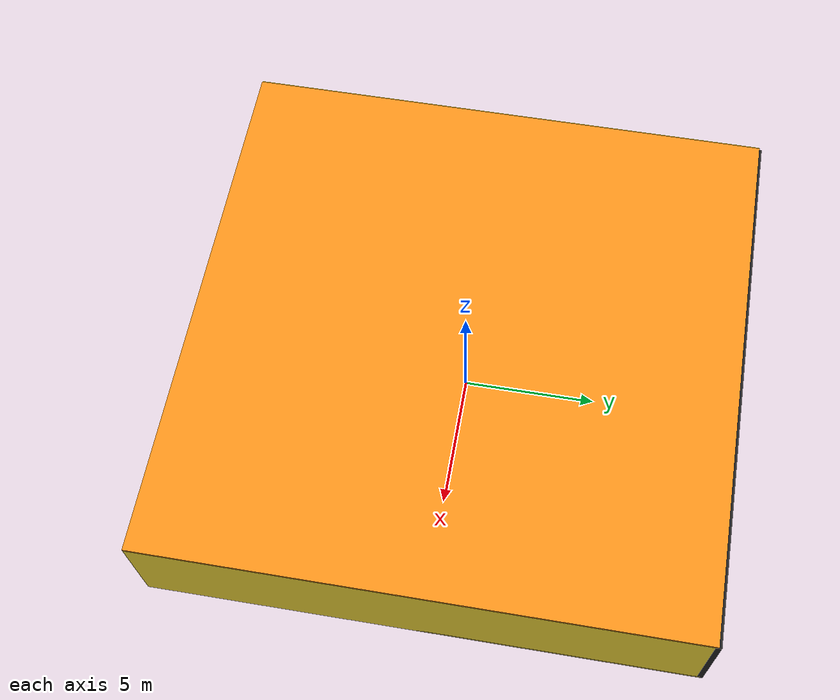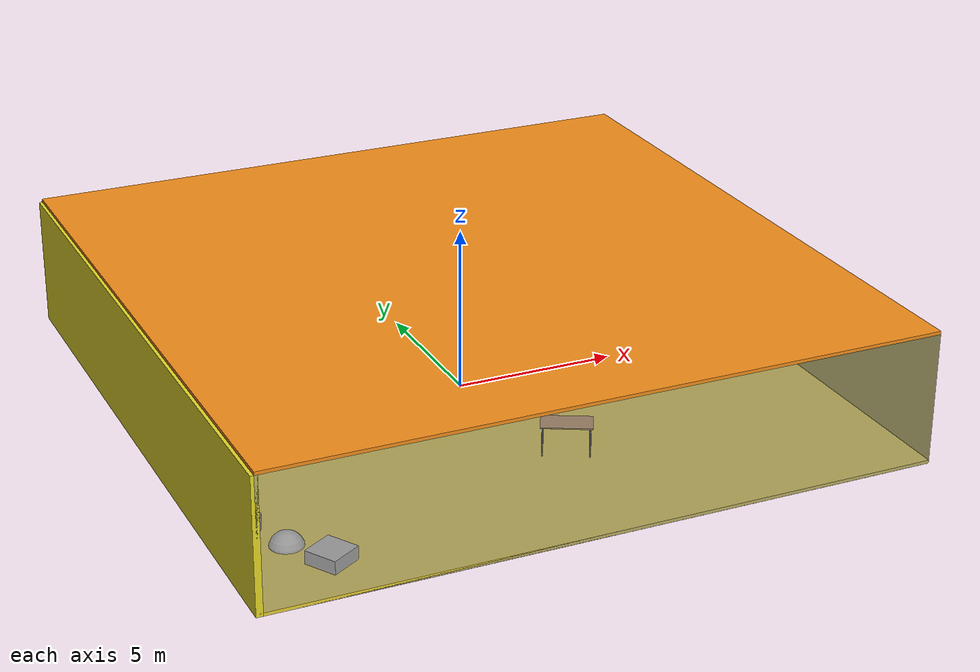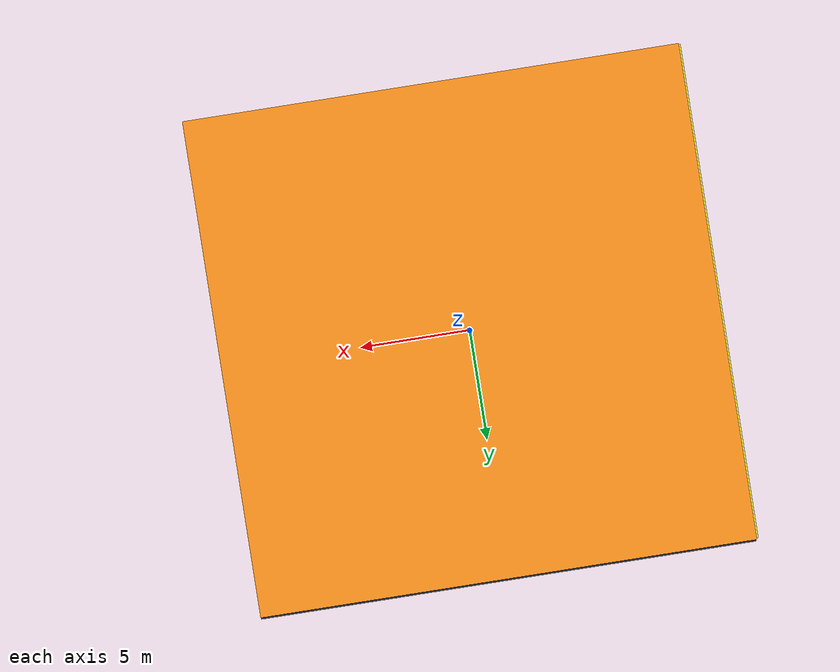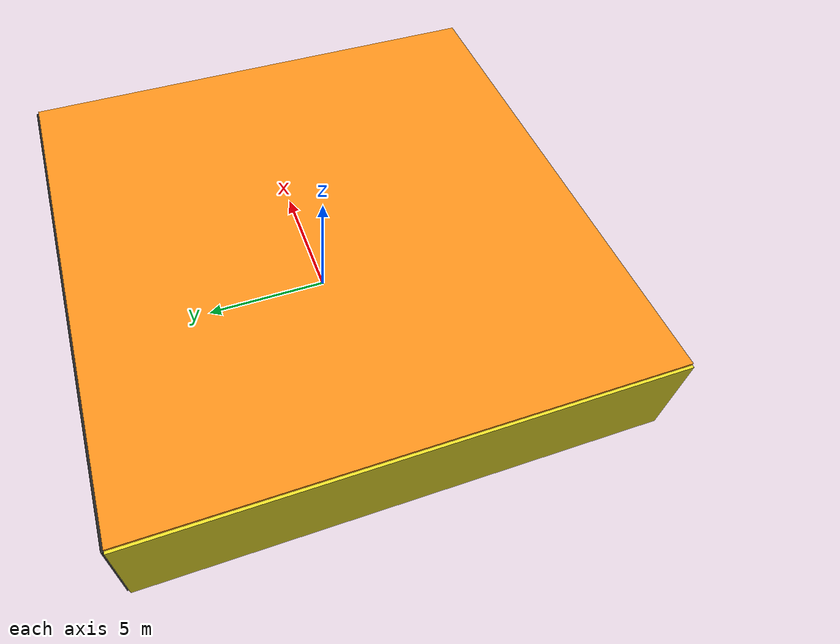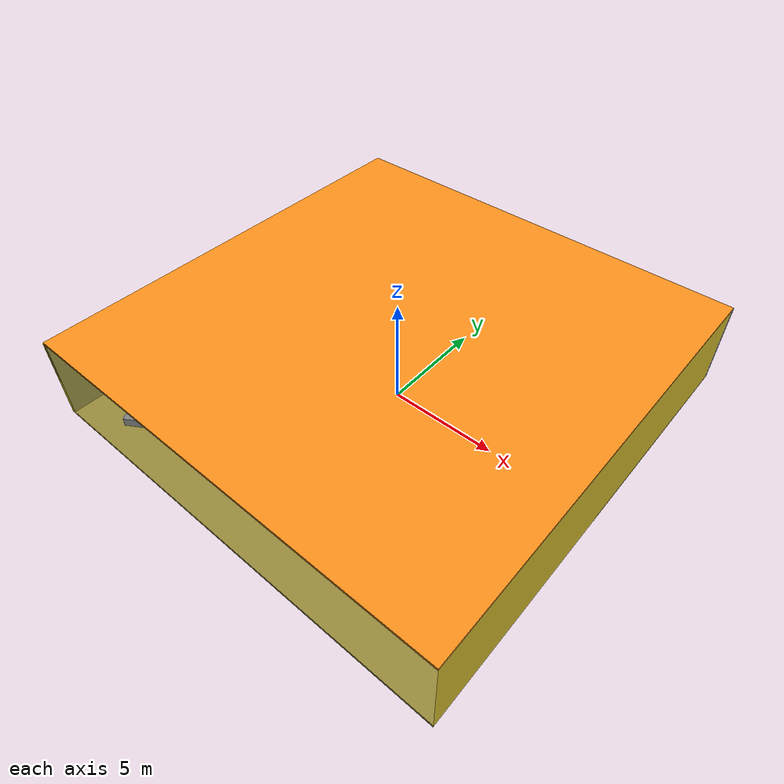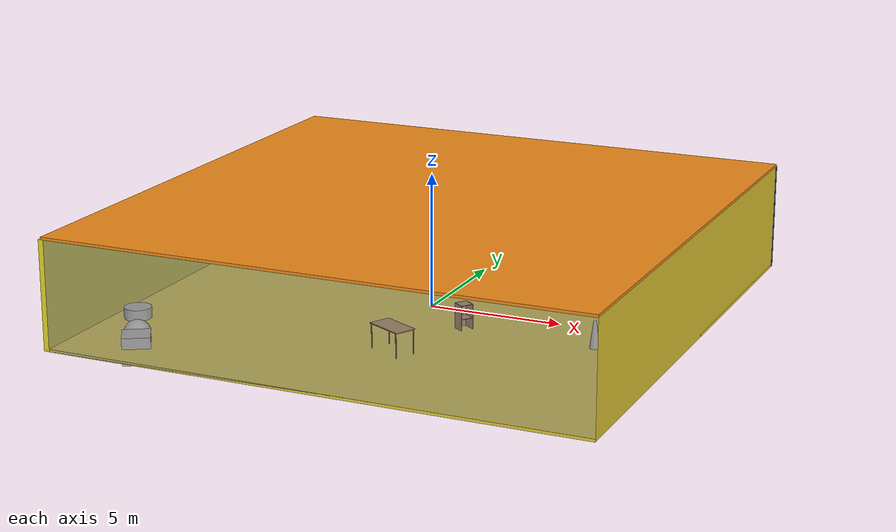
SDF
<sdf version="1.4">
 <world name="default">
  <physics type="ode">
   <max_step_size>0.001</max_step_size>
   <real_time_factor>1</real_time_factor>
   <real_time_update_rate>1000</real_time_update_rate>
   <gravity>0 0 -9.8</gravity>
  </physics>
  <scene><ambient>0.4 0.4 0.4 1</ambient><background>0.7 0.7 0.7 1</background><shadows>1</shadows></scene>
  <model name="Surrounding">
   <static>1</static>
   <link name="Ceiling">
    <collision name="Ceiling_Collision"><geometry><box><size>20 20 0.1</size></box></geometry></collision>
    <visual name="Ceiling_Visual">
     <geometry><box><size>20 20 0.1</size></box></geometry>
     <material>
      <script><uri>file://media/materials/scripts/gazebo.material</uri><name>Gazebo/Orange</name></script>
     </material>
    </visual>
    <pose>0 0 4.05 0 0 0</pose>
   </link>
   <link name="Wall_South">
    <collision name="Wall_South_Collision">
     <geometry><box><size>20 0 4</size></box></geometry>
     <pose>0 0 2 0 -0 0</pose>
    </collision>
    <visual name="Wall_South_Visual">
     <pose>0 0 2 0 -0 0</pose>
     <geometry><box><size>20 0 4</size></box></geometry>
     <material>
      <script><uri>file://media/materials/scripts/gazebo.material</uri><name>Gazebo/GreyTransparent</name></script>
     </material>
    </visual>
    <velocity_decay><linear>0</linear><angular>0</angular></velocity_decay>
    <pose>0 -10 0 0 -0 0</pose>
   </link>
   <link name="Wall_East">
    <collision name="Wall_21_Collision">
     <geometry><box><size>20 0 4</size></box></geometry>
     <pose>0 0 2 0 -0 0</pose>
    </collision>
    <visual name="Wall_21_Visual">
     <pose>0 0 2 0 -0 0</pose>
     <geometry><box><size>20 0 4</size></box></geometry>
     <material>
      <script><uri>file://media/materials/scripts/gazebo.material</uri><name>Gazebo/ZincYellow</name></script>
     </material>
    </visual>
    <velocity_decay><linear>0</linear><angular>0</angular></velocity_decay>
    <pose>10 0 0 0 -0 1.5708</pose>
   </link>
   <link name="Wall_North">
    <collision name="Wall_22_Collision">
     <geometry><box><size>20 0.2 4</size></box></geometry>
     <pose>0 0 2 0 -0 0</pose>
    </collision>
    <visual name="Wall_22_Visual">
     <pose>0 0 2 0 -0 0</pose>
     <geometry><box><size>20 0.2 4</size></box></geometry>
     <material>
      <script><uri>file://media/materials/scripts/gazebo.material</uri><name>Gazebo/FlatBlack</name></script>
     </material>
    </visual>
    <velocity_decay><linear>0</linear><angular>0</angular></velocity_decay>
    <pose>0 10 0 0 -0 0</pose>
   </link>
   <link name="Wall_West">
    <collision name="Wall_23_Collision">
     <geometry><box><size>20 0.2 4</size></box></geometry>
     <pose>0 0 2 0 -0 0</pose>
    </collision>
    <visual name="Wall_23_Visual">
     <pose>0 0 2 0 -0 0</pose>
     <geometry><box><size>20 0.2 4</size></box></geometry>
     <material>
      <script><uri>file://media/materials/scripts/gazebo.material</uri><name>Gazebo/YellowGlow</name></script>
     </material>
    </visual>
    <velocity_decay><linear>0</linear><angular>0</angular></velocity_decay>
    <pose>-10 0 0 0 0 -1.5708</pose>
   </link>
   <link name="Ground_link">
    <collision name="collision">
     <pose>0 0 .05 0 -0 0</pose>
     <geometry><box><size>20 20 0.1</size></box></geometry>
    </collision>
    <visual name="visual">
     <pose>0 0 .05 0 -0 0</pose>
     <geometry><box><size>20 20 0.1</size></box></geometry>
     <material>
      <script><uri>file://media/materials/scripts/gazebo.material</uri><name>Gazebo/ZincYellow</name></script>
     </material>
    </visual>
   </link>
   <static>1</static>
  </model>
  <spherical_coordinates>
   <surface_model>EARTH_WGS84</surface_model>
   <latitude_deg>0</latitude_deg>
   <longitude_deg>0</longitude_deg>
   <elevation>0</elevation>
   <heading_deg>0</heading_deg>
  </spherical_coordinates>
  <light name="lightball_0" type="diffuse">
   <diffuse>0.8 0.8 0.8 1</diffuse>
   <specular>0.2 0.2 0.2 1</specular>
   <attenuation>
    <range>100</range>
    <constant>0.7</constant>
    <linear>0.01</linear>
    <quadratic>0.001</quadratic>
   </attenuation>
   <direction>-0.5 0.1 -0.9</direction>
   <pose>9.222111301 6.22390029013 2.43052965422 0 0 0</pose>
  </light>
  <light name="lightball_1" type="diffuse">
   <diffuse>0.8 0.8 0.8 1</diffuse>
   <specular>0.2 0.2 0.2 1</specular>
   <attenuation>
    <range>100</range>
    <constant>0.7</constant>
    <linear>0.01</linear>
    <quadratic>0.001</quadratic>
   </attenuation>
   <direction>-0.5 0.1 -0.9</direction>
   <pose>-9.18638406003 5.3167375686 0.757529377678 0 0 0</pose>
  </light>
  <light name="lightball_2" type="diffuse">
   <diffuse>0.8 0.8 0.8 1</diffuse>
   <specular>0.2 0.2 0.2 1</specular>
   <attenuation>
    <range>100</range>
    <constant>0.7</constant>
    <linear>0.01</linear>
    <quadratic>0.001</quadratic>
   </attenuation>
   <direction>-0.5 0.1 -0.9</direction>
   <pose>1.29817245656 9.44758804756 1.18599326054 0 0 0</pose>
  </light>
  <light name="lightball_3" type="diffuse">
   <diffuse>0.8 0.8 0.8 1</diffuse>
   <specular>0.2 0.2 0.2 1</specular>
   <attenuation>
    <range>100</range>
    <constant>0.7</constant>
    <linear>0.01</linear>
    <quadratic>0.001</quadratic>
   </attenuation>
   <direction>-0.5 0.1 -0.9</direction>
   <pose>-9.61615435023 -2.64668222801 0.71098088426 0 0 0</pose>
  </light>
  <light name="lightball_4" type="diffuse">
   <diffuse>0.8 0.8 0.8 1</diffuse>
   <specular>0.2 0.2 0.2 1</specular>
   <attenuation>
    <range>100</range>
    <constant>0.7</constant>
    <linear>0.01</linear>
    <quadratic>0.001</quadratic>
   </attenuation>
   <direction>-0.5 0.1 -0.9</direction>
   <pose>8.85031690205 8.62863387069 2.70016344298 0 0 0</pose>
  </light>
  <light name="lightball_5" type="diffuse">
   <diffuse>0.8 0.8 0.8 1</diffuse>
   <specular>0.2 0.2 0.2 1</specular>
   <attenuation>
    <range>100</range>
    <constant>0.7</constant>
    <linear>0.01</linear>
    <quadratic>0.001</quadratic>
   </attenuation>
   <direction>-0.5 0.1 -0.9</direction>
   <pose>4.43603339522 -7.1794984475 0.686143160239 0 0 0</pose>
  </light>
  <light name="lightball_6" type="diffuse">
   <diffuse>0.8 0.8 0.8 1</diffuse>
   <specular>0.2 0.2 0.2 1</specular>
   <attenuation>
    <range>100</range>
    <constant>0.7</constant>
    <linear>0.01</linear>
    <quadratic>0.001</quadratic>
   </attenuation>
   <direction>-0.5 0.1 -0.9</direction>
   <pose>4.62538691441 5.13878323006 3.06700606088 0 0 0</pose>
  </light>
  <light name="lightball_7" type="diffuse">
   <diffuse>0.8 0.8 0.8 1</diffuse>
   <specular>0.2 0.2 0.2 1</specular>
   <attenuation>
    <range>100</range>
    <constant>0.7</constant>
    <linear>0.01</linear>
    <quadratic>0.001</quadratic>
   </attenuation>
   <direction>-0.5 0.1 -0.9</direction>
   <pose>1.21580350416 9.39001992789 2.66400664357 0 0 0</pose>
  </light>
  <light name="lightball_8" type="diffuse">
   <diffuse>0.8 0.8 0.8 1</diffuse>
   <specular>0.2 0.2 0.2 1</specular>
   <attenuation>
    <range>100</range>
    <constant>0.7</constant>
    <linear>0.01</linear>
    <quadratic>0.001</quadratic>
   </attenuation>
   <direction>-0.5 0.1 -0.9</direction>
   <pose>6.65004527385 5.5250456538 1.12311324559 0 0 0</pose>
  </light>
  <light name="lightball_9" type="diffuse">
   <diffuse>0.8 0.8 0.8 1</diffuse>
   <specular>0.2 0.2 0.2 1</specular>
   <attenuation>
    <range>100</range>
    <constant>0.7</constant>
    <linear>0.01</linear>
    <quadratic>0.001</quadratic>
   </attenuation>
   <direction>-0.5 0.1 -0.9</direction>
   <pose>7.31487699212 -4.78210253511 3.45933175832 0 0 0</pose>
  </light>
  <light name="lightball_10" type="diffuse">
   <diffuse>0.8 0.8 0.8 1</diffuse>
   <specular>0.2 0.2 0.2 1</specular>
   <attenuation>
    <range>100</range>
    <constant>0.7</constant>
    <linear>0.01</linear>
    <quadratic>0.001</quadratic>
   </attenuation>
   <direction>-0.5 0.1 -0.9</direction>
   <pose>-1.26647084408 7.73030924509 2.91556096392 0 0 0</pose>
  </light>
  <light name="lightball_11" type="diffuse">
   <diffuse>0.8 0.8 0.8 1</diffuse>
   <specular>0.2 0.2 0.2 1</specular>
   <attenuation>
    <range>100</range>
    <constant>0.7</constant>
    <linear>0.01</linear>
    <quadratic>0.001</quadratic>
   </attenuation>
   <direction>-0.5 0.1 -0.9</direction>
   <pose>-8.53077639687 3.23382672068 2.57252466662 0 0 0</pose>
  </light>
  <include>
   <uri>model://textured_shapes</uri>
   <pose>-8.19764856947 -7.06147772136 0 0 0 0.542351858576</pose>
  </include>
  <include>
   <uri>model://robocup_3Dsim_goal</uri>
   <pose>-4.18618256433 3.83208738387 0 0 0 0.883906617498</pose>
  </include>
  <include>
   <uri>model://construction_cone</uri>
   <pose>-1.65852163354 5.1954657316 0 0 0 0.977045033778</pose>
  </include>
  <include><uri>model://table</uri><pose>0.912387767985 -5.28501992604 0 0 0 2.66898197974</pose></include>
  <include><uri>model://cabinet</uri><pose>2.1680441224 -2.06723165467 0 0 0 2.52151108041</pose></include>
  <include><uri>model://cabinet</uri><pose>1.7055739763 5.18905939884 0 0 0 2.88843548557</pose></include>
  <include>
   <uri>model://construction_cone</uri>
   <pose>7.10290523226 -2.15030354451 0 0 0 1.7457500267</pose>
  </include>
 </world>
</sdf>

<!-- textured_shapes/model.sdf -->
<sdf version="1.6">
  <model name="textured_shapes">
    <pose>0 0 0.5 0 0 0</pose>
    <link name="box">
      <pose>0 -1.5 0 0 0 0</pose>
      <collision name="collision">
        <geometry>
          <box>
            <size>1 1 1</size>
          </box>
        </geometry>
      </collision>
      <visual name="visual">
        <geometry>
          <box>
            <size>1 1 1</size>
          </box>
        </geometry>
        <material>
          <script>
            <uri>model://../model_source/models/textured_shapes/materials/scripts</uri>
            <uri>model://../model_source/models/textured_shapes/materials/textures</uri>
            <name>TexturedShape/Squares</name>
          </script>
        </material>
      </visual>
    </link>
    <link name="sphere">
      <collision name="collision">
        <geometry>
          <sphere>
            <radius>0.5</radius>
          </sphere>
        </geometry>
      </collision>
      <visual name="visual">
        <geometry>
          <sphere>
            <radius>0.5</radius>
          </sphere>
        </geometry>
        <material>
          <script>
            <uri>model://../model_source/models/textured_shapes/materials/scripts</uri>
            <uri>model://../model_source/models/textured_shapes/materials/textures</uri>
            <name>TexturedShape/Squares</name>
          </script>
        </material>
      </visual>
    </link>
    <link name="cylinder">
      <pose>0 1.5 0 0 0 0</pose>
      <collision name="collision">
        <geometry>
          <cylinder>
            <radius>0.5</radius>
            <length>1</length>
          </cylinder>
        </geometry>
      </collision>
      <visual name="visual">
        <geometry>
          <cylinder>
            <radius>0.5</radius>
            <length>1</length>
          </cylinder>
        </geometry>
        <material>
          <script>
            <uri>model://../model_source/models/textured_shapes/materials/scripts</uri>
            <uri>model://../model_source/models/textured_shapes/materials/textures</uri>
            <name>TexturedShape/Squares</name>
          </script>
        </material>
      </visual>
    </link>
  </model>
</sdf>

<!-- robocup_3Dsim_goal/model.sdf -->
<sdf version="1.5">
  <model name="robocup_3d_goal">
    <static>true</static>
    <link name="left_post">
      <pose>0 1.05 0.45 0 0 0</pose>
      <collision name="collision">
        <geometry>
          <cylinder>
            <radius>0.05</radius>
            <length>0.9</length>
          </cylinder>
        </geometry>
      </collision>
      <visual name="visual">
        <geometry>
          <cylinder>
            <radius>0.05</radius>
            <length>0.9</length>
          </cylinder>
        </geometry>
        <material>
          <script>
            <uri>file://media/materials/scripts/gazebo.material</uri>
            <name>Gazebo/ZincYellow</name>
          </script>
        </material>
      </visual>
    </link>
    <link name="left_support_horiz_lower">
      <pose>0.30 1.05 0.01 0 0 0</pose>
      <collision name="collision">
        <geometry>
          <box>
            <size>0.50 0.02 0.02</size>
          </box>
        </geometry>
      </collision>
      <visual name="visual">
        <geometry>
          <box>
            <size>0.50 0.02 0.02</size>
          </box>
        </geometry>
        <material>
          <script>
            <uri>file://media/materials/scripts/gazebo.material</uri>
            <name>Gazebo/White</name>
          </script>
        </material>
      </visual>
    </link>
    <link name="left_support_horiz_upper">
      <pose>0.30 1.05 0.79 0 0 0</pose>
      <collision name="collision">
        <geometry>
          <box>
            <size>0.50 0.02 0.02</size>
          </box>
        </geometry>
      </collision>
      <visual name="visual">
        <geometry>
          <box>
            <size>0.50 0.02 0.02</size>
          </box>
        </geometry>
        <material>
          <script>
            <uri>file://media/materials/scripts/gazebo.material</uri>
            <name>Gazebo/White</name>
          </script>
        </material>
      </visual>
    </link>
    <link name="left_support_vertical">
      <pose>0.56 1.05 0.4 0 1.5708 0</pose>
      <collision name="collision">
        <geometry>
          <box>
            <size>0.80 0.02 0.02</size>
          </box>
        </geometry>
      </collision>
      <visual name="visual">
        <geometry>
          <box>
            <size>0.80 0.02 0.02</size>
          </box>
        </geometry>
        <material>
          <script>
            <uri>file://media/materials/scripts/gazebo.material</uri>
            <name>Gazebo/White</name>
          </script>
        </material>
      </visual>
    </link>
    <link name="right_support_horiz_lower">
      <pose>0.30 -1.05 0.01 0 0 0</pose>
      <collision name="collision">
        <geometry>
          <box>
            <size>0.50 0.02 0.02</size>
          </box>
        </geometry>
      </collision>
      <visual name="visual">
        <geometry>
          <box>
            <size>0.50 0.02 0.02</size>
          </box>
        </geometry>
        <material>
          <script>
            <uri>file://media/materials/scripts/gazebo.material</uri>
            <name>Gazebo/White</name>
          </script>
        </material>
      </visual>
    </link>
    <link name="right_support_horiz_upper">
      <pose>0.30 -1.05 0.79 0 0 0</pose>
      <collision name="collision">
        <geometry>
          <box>
            <size>0.50 0.02 0.02</size>
          </box>
        </geometry>
      </collision>
      <visual name="visual">
        <geometry>
          <box>
            <size>0.50 0.02 0.02</size>
          </box>
        </geometry>
        <material>
          <script>
            <uri>file://media/materials/scripts/gazebo.material</uri>
            <name>Gazebo/White</name>
          </script>
        </material>
      </visual>
    </link>
    <link name="right_support_vertical">
      <pose>0.56 -1.05 0.4 0 1.5708 0</pose>
      <collision name="collision">
        <geometry>
          <box>
            <size>0.80 0.02 0.02</size>
          </box>
        </geometry>
      </collision>
      <visual name="visual">
        <geometry>
          <box>
            <size>0.80 0.02 0.02</size>
          </box>
        </geometry>
        <material>
          <script>
            <uri>file://media/materials/scripts/gazebo.material</uri>
            <name>Gazebo/White</name>
          </script>
        </material>
      </visual>
    </link>
    <link name="center_support_horiz_lower">
      <pose>0.56 0 0.01 0 1.5708 0</pose>
      <collision name="collision">
        <geometry>
          <box>
            <size>0.02 2.08 0.02</size>
          </box>
        </geometry>
      </collision>
      <visual name="visual">
        <geometry>
          <box>
            <size>0.02 2.08 0.02</size>
          </box>
        </geometry>
        <material>
          <script>
            <uri>file://media/materials/scripts/gazebo.material</uri>
            <name>Gazebo/White</name>
          </script>
        </material>
      </visual>
    </link>
    <link name="center_support_horiz_upper">
      <pose>0.56 0 0.79 0 1.5708 0</pose>
      <collision name="collision">
        <geometry>
          <box>
            <size>0.02 2.08 0.02</size>
          </box>
        </geometry>
      </collision>
      <visual name="visual">
        <geometry>
          <box>
            <size>0.02 2.08 0.02</size>
          </box>
        </geometry>
        <material>
          <script>
            <uri>file://media/materials/scripts/gazebo.material</uri>
            <name>Gazebo/White</name>
          </script>
        </material>
      </visual>
    </link>
    <link name="right_post">
      <pose>0 -1.05 0.45 0 0 0</pose>
      <collision name="collision">
        <geometry>
          <cylinder>
            <radius>0.05</radius>
            <length>0.9</length>
          </cylinder>
        </geometry>
      </collision>
      <visual name="visual">
        <geometry>
          <cylinder>
            <radius>0.05</radius>
            <length>0.9</length>
          </cylinder>
        </geometry>
        <material>
          <script>
            <uri>file://media/materials/scripts/gazebo.material</uri>
            <name>Gazebo/ZincYellow</name>
          </script>
        </material>
      </visual>
    </link>
    <link name="crossbar">
      <pose>0 0 0.85 1.57 1.57 0</pose>
      <collision name="collision">
        <geometry>
          <cylinder>
            <radius>0.05</radius>
            <length>2.0</length>
          </cylinder>
        </geometry>
      </collision>
      <visual name="visual">
        <geometry>
          <cylinder>
            <radius>0.05</radius>
            <length>2.0</length>
          </cylinder>
        </geometry>
        <material>
          <script>
            <uri>file://media/materials/scripts/gazebo.material</uri>
            <name>Gazebo/ZincYellow</name>
          </script>
        </material>
      </visual>
    </link>
    <link name="center_net">
      <pose>0.56 0 0.40 0 0 0</pose>
      <collision name="collision">
        <geometry>
          <box>
            <size>0.01 2.1 0.80</size>
          </box>
        </geometry>
      </collision>
      <visual name="visual">
        <geometry>
          <box>
            <size>0.01 2.1 0.80</size>
          </box>
        </geometry>
        <material>
          <script>
            <uri>model://../model_source/models/robocup09_spl_field/materials/scripts/</uri>
            <uri>model://../model_source/models/robocup09_spl_field/materials/textures/</uri>
            <name>RoboCup/Net</name>
          </script>
        </material>
      </visual>
    </link>
    <link name="left_net">
      <pose>0.30 1.05 0.40 0 0 0</pose>
      <collision name="collision">
        <geometry>
          <box>
            <size>0.50 0.01 0.76</size>
          </box>
        </geometry>
      </collision>
      <visual name="visual">
        <geometry>
          <box>
            <size>0.50 0.01 0.76</size>
          </box>
        </geometry>
        <material>
          <script>
            <uri>model://../model_source/models/robocup09_spl_field/materials/scripts/</uri>
            <uri>model://../model_source/models/robocup09_spl_field/materials/textures/</uri>
            <name>RoboCup/Net</name>
          </script>
        </material>
      </visual>
    </link>
    <link name="right_net">
      <pose>0.30 -1.05 0.40 0 0 0</pose>
      <collision name="collision">
        <geometry>
          <box>
            <size>0.50 0.01 0.76</size>
          </box>
        </geometry>
      </collision>
      <visual name="visual">
        <geometry>
          <box>
            <size>0.50 0.01 0.76</size>
          </box>
        </geometry>
        <material>
          <script>
            <uri>model://../model_source/models/robocup09_spl_field/materials/scripts/</uri>
            <uri>model://../model_source/models/robocup09_spl_field/materials/textures/</uri>
            <name>RoboCup/Net</name>
          </script>
        </material>
      </visual>
    </link>
  </model>
</sdf>

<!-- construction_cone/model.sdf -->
<sdf version="1.5">
  <model name="Construction Cone">
    <link name="link">
      <collision name="collision">
        <geometry>
          <mesh>
            <scale>10 10 10</scale>
            <uri>file://isr-testbed/construction_cone/meshes/construction_cone.dae</uri>
          </mesh>
        </geometry>
      </collision>
      <visual name="visual">
        <geometry>
          <mesh>
            <scale>10 10 10</scale>
            <uri>file://isr-testbed/construction_cone/meshes/construction_cone.dae</uri>
          </mesh>
        </geometry>
      </visual>
    </link>
  </model>
</sdf>

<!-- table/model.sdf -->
<sdf version="1.5">
  <model name="table">
    <static>true</static>
    <link name="link">
      <collision name="surface">
        <pose>0 0 1.0 0 0 0</pose>
        <geometry>
          <box>
            <size>1.5 0.8 0.03</size>
          </box>
        </geometry>
        <surface>
          <friction>
            <ode>
              <mu>0.6</mu>
              <mu2>0.6</mu2>
            </ode>
          </friction>
        </surface>
      </collision>
      <visual name="visual1">
        <pose>0 0 1.0 0 0 0</pose>
        <geometry>
          <box>
            <size>1.5 0.8 0.03</size>
          </box>
        </geometry>
        <material>
          <script>
            <uri>model://media/materials/scripts/gazebo.material</uri>
            <name>Gazebo/Wood</name>
          </script>
        </material>
      </visual>
      <collision name="front_left_leg">
        <pose>0.68 0.38 0.5 0 0 0</pose>
        <geometry>
          <cylinder>
            <radius>0.02</radius>
            <length>1.0</length>
          </cylinder>
        </geometry>
      </collision>
      <visual name="front_left_leg">
        <pose>0.68 0.38 0.5 0 0 0</pose>
        <geometry>
          <cylinder>
            <radius>0.02</radius>
            <length>1.0</length>
          </cylinder>
        </geometry>
        <material>
          <script>
            <uri>model://media/materials/scripts/gazebo.material</uri>
            <name>Gazebo/Grey</name>
          </script>
        </material>
      </visual>
      <collision name="front_right_leg">
        <pose>0.68 -0.38 0.5 0 0 0</pose>
        <geometry>
          <cylinder>
            <radius>0.02</radius>
            <length>1.0</length>
          </cylinder>
        </geometry>
      </collision>
      <visual name="front_right_leg">
        <pose>0.68 -0.38 0.5 0 0 0</pose>
        <geometry>
          <cylinder>
            <radius>0.02</radius>
            <length>1.0</length>
          </cylinder>
        </geometry>
        <material>
          <script>
            <uri>model://media/materials/scripts/gazebo.material</uri>
            <name>Gazebo/Grey</name>
          </script>
        </material>
      </visual>
      <collision name="back_right_leg">
        <pose>-0.68 -0.38 0.5 0 0 0</pose>
        <geometry>
          <cylinder>
            <radius>0.02</radius>
            <length>1.0</length>
          </cylinder>
        </geometry>
      </collision>
      <visual name="back_right_leg">
        <pose>-0.68 -0.38 0.5 0 0 0</pose>
        <geometry>
          <cylinder>
            <radius>0.02</radius>
            <length>1.0</length>
          </cylinder>
        </geometry>
        <material>
          <script>
            <uri>model://media/materials/scripts/gazebo.material</uri>
            <name>Gazebo/Grey</name>
          </script>
        </material>
      </visual>
      <collision name="back_left_leg">
        <pose>-0.68 0.38 0.5 0 0 0</pose>
        <geometry>
          <cylinder>
            <radius>0.02</radius>
            <length>1.0</length>
          </cylinder>
        </geometry>
      </collision>
      <visual name="back_left_leg">
        <pose>-0.68 0.38 0.5 0 0 0</pose>
        <geometry>
          <cylinder>
            <radius>0.02</radius>
            <length>1.0</length>
          </cylinder>
        </geometry>
        <material>
          <script>
            <uri>model://media/materials/scripts/gazebo.material</uri>
            <name>Gazebo/Grey</name>
          </script>
        </material>
      </visual>
    </link>
  </model>
</sdf>

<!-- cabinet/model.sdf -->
<sdf version="1.5">
  <model name="cabinet">
    <static>true</static>
    <link name="cabinet_bottom_plate">
      <inertial>
        <pose>0 0 -1 0 0 0</pose>
        <inertia>
          <ixx>2.050000</ixx>
          <ixy>0</ixy>
          <ixz>0</ixz>
          <iyy>2.050000</iyy>
          <iyz>0</iyz>
          <izz>2.050000</izz>
        </inertia>
        <mass>25.000000</mass>
      </inertial>
      <collision name="cabinet_bottom_plate_geom">
        <pose>0 0 0.010000 0 0 0</pose>
        <geometry>
          <box>
            <size>0.450000 0.450000 0.020000</size>
          </box>
        </geometry>
      </collision>
      <visual name="cabinet_bottom_plate_geom_visual">
        <pose>0 0 0.010000 0 0 0</pose>
        <geometry>
          <box>
            <size>0.450000 0.450000 0.020000</size>
          </box>
        </geometry>
        <material>
          <script>
            <uri>model://media/materials/scripts/gazebo.material</uri>
            <name>Gazebo/Wood</name>
          </script>
        </material>
      </visual>
      <collision name="cabinet_bottom_plate_geom_cabinet_back_plate">
        <pose>0.235000 0 0.510000 0 0 0</pose>
        <geometry>
          <box>
            <size>0.020000 0.450000 1.020000</size>
          </box>
        </geometry>
      </collision>
      <visual name="cabinet_bottom_plate_geom_cabinet_back_plate_visual">
        <pose>0.235000 0 0.510000 0 0 0</pose>
        <geometry>
          <box>
            <size>0.020000 0.450000 1.020000</size>
          </box>
        </geometry>
        <material>
          <script>
            <uri>model://media/materials/scripts/gazebo.material</uri>
            <name>Gazebo/Wood</name>
          </script>
        </material>
      </visual>
      <collision name="cabinet_bottom_plate_geom_cabinet_left_plate">
        <pose>0 0.235000 0.510000 0 0 0</pose>
        <geometry>
          <box>
            <size>0.450000 0.020000 1.020000</size>
          </box>
        </geometry>
      </collision>
      <visual name="cabinet_bottom_plate_geom_cabinet_left_plate_visual">
        <pose>0 0.235000 0.510000 0 0 0</pose>
        <geometry>
          <box>
            <size>0.450000 0.020000 1.020000</size>
          </box>
        </geometry>
        <material>
          <script>
            <uri>model://media/materials/scripts/gazebo.material</uri>
            <name>Gazebo/Wood</name>
          </script>
        </material>
      </visual>
      <collision name="cabinet_bottom_plate_geom_cabinet_middle_plate">
        <pose>0 0 0.510000 0 0 0</pose>
        <geometry>
          <box>
            <size>0.450000 0.450000 0.020000</size>
          </box>
        </geometry>
      </collision>
      <visual name="cabinet_bottom_plate_geom_cabinet_middle_plate_visual">
        <pose>0 0 0.510000 0 0 0</pose>
        <geometry>
          <box>
            <size>0.450000 0.450000 0.020000</size>
          </box>
        </geometry>
        <material>
          <script>
            <uri>model://media/materials/scripts/gazebo.material</uri>
            <name>Gazebo/Wood</name>
          </script>
        </material>
      </visual>
      <collision name="cabinet_bottom_plate_geom_cabinet_right_plate">
        <pose>0 -0.235000 0.510000 0 0 0</pose>
        <geometry>
          <box>
            <size>0.450000 0.020000 1.020000</size>
          </box>
        </geometry>
      </collision>
      <visual name="cabinet_bottom_plate_geom_cabinet_right_plate_visual">
        <pose>0 -0.235000 0.510000 0 0 0</pose>
        <geometry>
          <box>
            <size>0.450000 0.020000 1.020000</size>
          </box>
        </geometry>
        <material>
          <script>
            <uri>model://media/materials/scripts/gazebo.material</uri>
            <name>Gazebo/Wood</name>
          </script>
        </material>
      </visual>
      <collision name="cabinet_bottom_plate_geom_cabinet_top_plate">
        <pose>0 0 1.010000 0 0 0</pose>
        <geometry>
          <box>
            <size>0.450000 0.450000 0.020000</size>
          </box>
        </geometry>
      </collision>
      <visual name="cabinet_bottom_plate_geom_cabinet_top_plate_visual">
        <pose>0 0 1.010000 0 0 0</pose>
        <geometry>
          <box>
            <size>0.450000 0.450000 0.020000</size>
          </box>
        </geometry>
        <material>
          <script>
            <uri>model://media/materials/scripts/gazebo.material</uri>
            <name>Gazebo/Wood</name>
          </script>
        </material>
      </visual>
    </link>
  </model>
</sdf>
